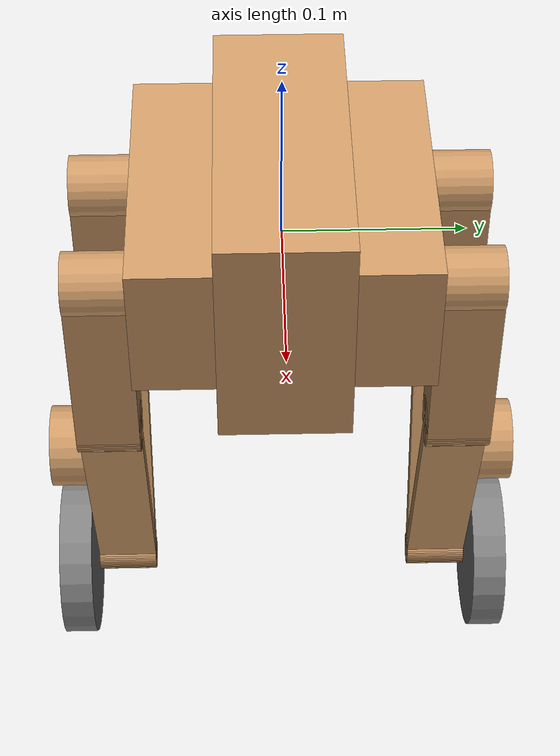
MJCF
<mujoco>
    <option gravity="0 0 0" timestep="0.002" />
    <asset>
        <material name="blue_" rgba="0 0 1 1" />
        <material name="green" rgba="0 1 0 1" />
        <material name="red__" rgba="1 0 0 1" />
        <material name="white" rgba="1 1 1 1" />
    </asset>

    <default>
        <default class="visual">
            <geom contype="0" conaffinity="0" condim="3" density="5.0" friction="1 0.5 0.5" rgba="0.8 0.6 0.4 1"/>
        </default>
    </default>

    <worldbody>
        <geom type="plane" size="10 10 0.1" pos="0 0 -2" rgba=".9 0 0 1" />
        <light diffuse=".5 .5 .5" pos="0 0 3" dir="0 0 -1" />
        <body name="base" pos="0 0 0">
            <inertial pos="0.002 0.001 0.025" mass="2.1154" fullinertia="8626.3165e-9 15049.9921e-9 9458.3977e-9 -21.1545e-9 -152.0574e-9 253.6369e-9"/>
            <joint type="free"/>
            <geom type="box" size="0.090 0.036 0.065" pos="0 0 0" euler="0 0 0" material="red__" class="visual"/>
            <body name="link_1" pos="0 0.036 0">
                <inertial pos="0.0004 0.0063 -0.0001" mass="0.8179" fullinertia="447.4018e-9 1923.7425e-9 1762.3913e-9 1.1679e-9 2.4194e-9 4.5908e-9"/>
                <geom type="box" size="0.080 0.0225 0.040" pos="0 0.0225 0" euler="0 0 0" material="green" class="visual"/>
                <body name="link_2" pos="0.040 0.063 0" euler="0 0 0">
                    <inertial pos="0.0002 -0.0009 -0.0578" mass="0.1051" fullinertia="524.9018e-9 506.4798e-9 32.4451e-9 2.2969e-9 -3.8809e-9 -0.4196e-9"/>
                    <joint name="hinge_1" pos="0 0 0" axis="0 1 0" />
                    <geom type="cylinder" size="0.0175 0.018" pos="0 0 0" euler="90 0 0" material="blue_" class="visual"/>
                    <geom type="box" size="0.015 0.018 0.055" pos="0 0 -0.055" euler="0 0 0" material="blue_" class="visual"/>
                    <geom type="cylinder" size="0.015 0.018" pos="0 0 -0.110" euler="90 0 0" material="blue_" class="visual"/>
                    <body name="link_3" pos="0 0 -0.110" euler="0 13.61 0">
                        <inertial pos="0.0 0.0059 -0.0633" mass="0.1179" fullinertia="924.3854e-9 910.758e-9 20.7635e-9 -0.0009e-9 0.0026e-9 -85.5923e-9"/>
                        <joint name="hinge_2" pos="0 0 0" axis="0 1 0" />
                        <geom type="cylinder" size="0.015 0.018" pos="0 0 0" euler="90 0 0" material="blue_" class="visual"/>
                        <geom type="box" size="0.005 0.018 0.085" pos="0 0 -0.085" euler="0 0 0" material="blue_" class="visual"/>
                        <geom type="cylinder" size="0.01 0.018" pos="0 0 -0.170" euler="90 0 0" material="blue_" class="visual"/>
                    </body>
                </body>
                <body name="link_4" pos="-0.040 0.063 0" euler="0 0 0">
                    <inertial pos="0.00015 -0.00087 -0.0578" mass="0.1051" fullinertia="524.9018e-9 506.4798e-9 32.4451e-9 2.2339e-9 3.8809e-9 0.41e-9"/>
                    <joint name="hinge_3" pos="0 0 0" axis="0 1 0" />
                    <geom type="cylinder" size="0.0175 0.018" pos="0 0 0" euler="90 0 0" material="blue_" class="visual"/>
                    <geom type="box" size="0.015 0.018 0.055" pos="0 0 -0.055" euler="0 0 0" material="blue_" class="visual"/>
                    <geom type="cylinder" size="0.015 0.018" pos="0 0 -0.110" euler="90 0 0" material="blue_" class="visual"/>
                    <body name="link_5" pos="0 0 -0.110" euler="0 -13.61 0">
                        <inertial pos="0.0 0.0059 -0.0633" mass="0.1179" fullinertia="924.3854e-9 910.758e-9 20.7635e-9 -0.0009e-9 0.0026e-9 -85.5923e-9"/>
                        <joint name="hinge_4" pos="0 0 0" axis="0 1 0" />
                        <geom type="cylinder" size="0.015 0.018" pos="0 0 0" euler="90 0 0" material="blue_" class="visual"/>
                        <geom type="box" size="0.005 0.018 0.085" pos="0 0 -0.085" euler="0 0 0" material="blue_" class="visual"/>
                        <geom type="cylinder" size="0.01 0.018" pos="0 0 -0.170" euler="90 0 0" material="blue_" class="visual"/>
                        <geom type="cylinder" size="0.025 0.025" pos="0 0.018 -0.085" euler="90 0 0" material="red__" class="visual"/>
                        <body name="link_6" pos="0 0 -0.170" euler="0 0 0">
                            <inertial pos="0 0 0" mass="0.1549" fullinertia="101.8106e-9 193.4262e-9 101.8115e-9 0 0.0002e-9 0"/>
                            <joint name="motor_1" pos="0 0 0" axis="0 1 0" />
                            <geom type="cylinder" contype="1" conaffinity="1" size="0.050 0.010" pos="0 0.03 0" euler="90 0 0"/>
                            <geom type="cylinder" size="0.050 0.010" pos="0 0.03 0" euler="90 0 0" material="white" class="visual"/>
                        </body>
                    </body>
                </body>
            </body>
            <body name="link_1_r" pos="0 -0.036 0" euler="0 0 180">
                <inertial pos="0.0004 0.0063 -0.0001" mass="0.8179" fullinertia="447.4018e-9 1923.7425e-9 1762.3913e-9 1.1679e-9 2.4194e-9 4.5908e-9"/>
                <geom type="box" size="0.080 0.0225 0.040" pos="0 0.0225 0" euler="0 0 0" material="green" class="visual"/>
                <body name="link_2_r" pos="0.040 0.063 0" euler="0 0 0">
                    <inertial pos="0.00015 -0.00087 -0.0578" mass="0.1051" fullinertia="524.9018e-9 506.4798e-9 32.4451e-9 2.2339e-9 3.8809e-9 0.41e-9"/>
                    <joint name="hinge_1_r" pos="0 0 0" axis="0 1 0" />
                    <geom type="cylinder" size="0.0175 0.018" pos="0 0 0" euler="90 0 0" material="blue_" class="visual"/>
                    <geom type="box" size="0.015 0.018 0.055" pos="0 0 -0.055" euler="0 0 0" material="blue_" class="visual"/>
                    <geom type="cylinder" size="0.015 0.018" pos="0 0 -0.110" euler="90 0 0" material="blue_" class="visual"/>
                    <body name="link_3_r" pos="0 0 -0.110" euler="0 13.61 0">
                        <inertial pos="0.0 0.0059 -0.0633" mass="0.1179" fullinertia="924.3854e-9 910.758e-9 20.7635e-9 -0.0009e-9 0.0026e-9 -85.5923e-9"/>
                        <joint name="hinge_2_r" pos="0 0 0" axis="0 1 0" />
                        <geom type="cylinder" size="0.015 0.018" pos="0 0 0" euler="90 0 0" material="blue_" class="visual"/>
                        <geom type="box" size="0.005 0.018 0.085" pos="0 0 -0.085" euler="0 0 0" material="blue_" class="visual"/>
                        <geom type="cylinder" size="0.01 0.018" pos="0 0 -0.170" euler="90 0 0" material="blue_" class="visual"/>
                        <geom type="cylinder" size="0.025 0.025" pos="0 0.018 -0.085" euler="90 0 0" material="red__" class="visual"/>
                        <body name="link_6_r" pos="0 0 -0.170" euler="0 0 0">
                            <inertial pos="0 0 0" mass="0.1549" fullinertia="101.8106e-9 193.4262e-9 101.8115e-9 0 0.0002e-9 0"/>
                            <joint name="motor_2" pos="0 0 0" axis="0 1 0" />
                            <geom type="cylinder" contype="1" conaffinity="1" size="0.050 0.010" pos="0 0.03 0" euler="90 0 0"/>
                            <geom type="cylinder" size="0.050 0.010" pos="0 0.03 0" euler="90 0 0" material="white" class="visual"/>
                        </body>
                    </body>
                </body>
                <body name="link_4_r" pos="-0.040 0.063 0" euler="0 0 0">
                    <inertial pos="0.0002 -0.0009 -0.0578" mass="0.1051" fullinertia="524.9018e-9 506.4798e-9 32.4451e-9 2.2969e-9 -3.8809e-9 -0.4196e-9"/>
                    <joint name="hinge_3_r" pos="0 0 0" axis="0 1 0" />
                    <geom type="cylinder" size="0.0175 0.018" pos="0 0 0" euler="90 0 0" material="blue_" class="visual"/>
                    <geom type="box" size="0.015 0.018 0.055" pos="0 0 -0.055" euler="0 0 0" material="blue_" class="visual"/>
                    <geom type="cylinder" size="0.015 0.018" pos="0 0 -0.110" euler="90 0 0" material="blue_" class="visual"/>
                    <body name="link_5_r" pos="0 0 -0.110" euler="0 -13.61 0">
                        <inertial pos="0.0 0.0059 -0.0633" mass="0.1179" fullinertia="924.3854e-9 910.758e-9 20.7635e-9 -0.0009e-9 0.0026e-9 -85.5923e-9"/>
                        <joint name="hinge_4_r" pos="0 0 0" axis="0 1 0" />
                        <geom type="cylinder" size="0.015 0.018" pos="0 0 0" euler="90 0 0" material="blue_" class="visual"/>
                        <geom type="box" size="0.005 0.018 0.085" pos="0 0 -0.085" euler="0 0 0" material="blue_" class="visual"/>
                        <geom type="cylinder" size="0.01 0.018" pos="0 0 -0.170" euler="90 0 0" material="blue_" class="visual"/>
                    </body>
                </body>
            </body>
        </body>
    </worldbody>
    <equality>
        <connect name="kinematic_link1" active="true" body1="link_3" body2="link_5" anchor="0 0 -0.170" />
        <connect name="kinematic_link2" active="true" body1="link_3_r" body2="link_5_r" anchor="0 0 -0.170" />
    </equality>
    <actuator>
        <motor joint="hinge_1" ctrlrange="-1 1" ctrllimited="true" />
        <motor joint="hinge_4" ctrlrange="-1 1" ctrllimited="true" />
        <motor joint="hinge_1_r" ctrlrange="-1 1" ctrllimited="true" />
        <motor joint="hinge_4_r" ctrlrange="-1 1" ctrllimited="true" />
        <velocity joint="motor_1" name="motor_1" ctrlrange="-100000 100000" ctrllimited="true"/>
        <velocity joint="motor_2" name="motor_2" ctrlrange="-100000 100000" ctrllimited="true"/>
    </actuator>
</mujoco>
